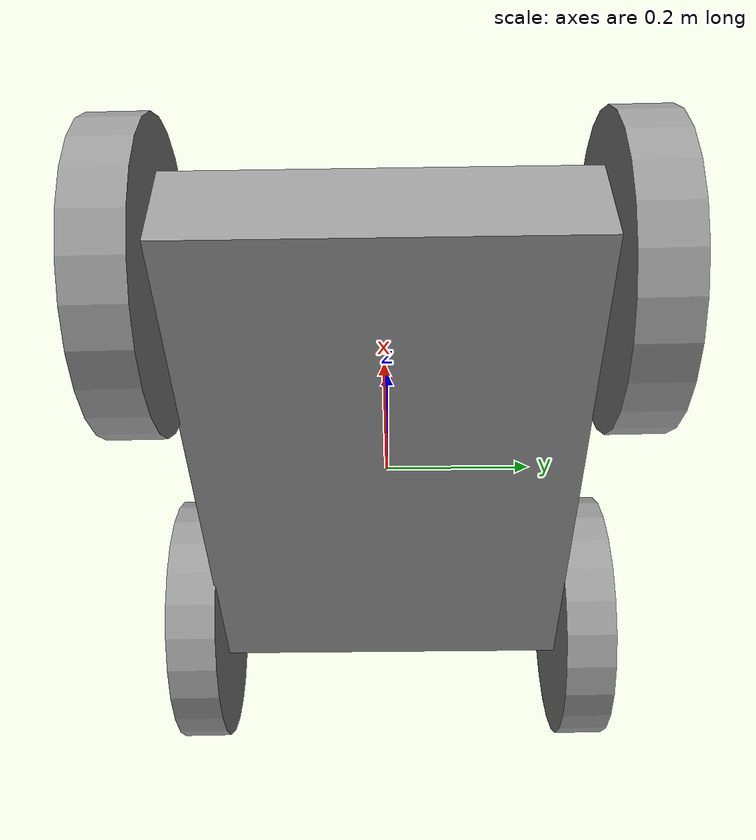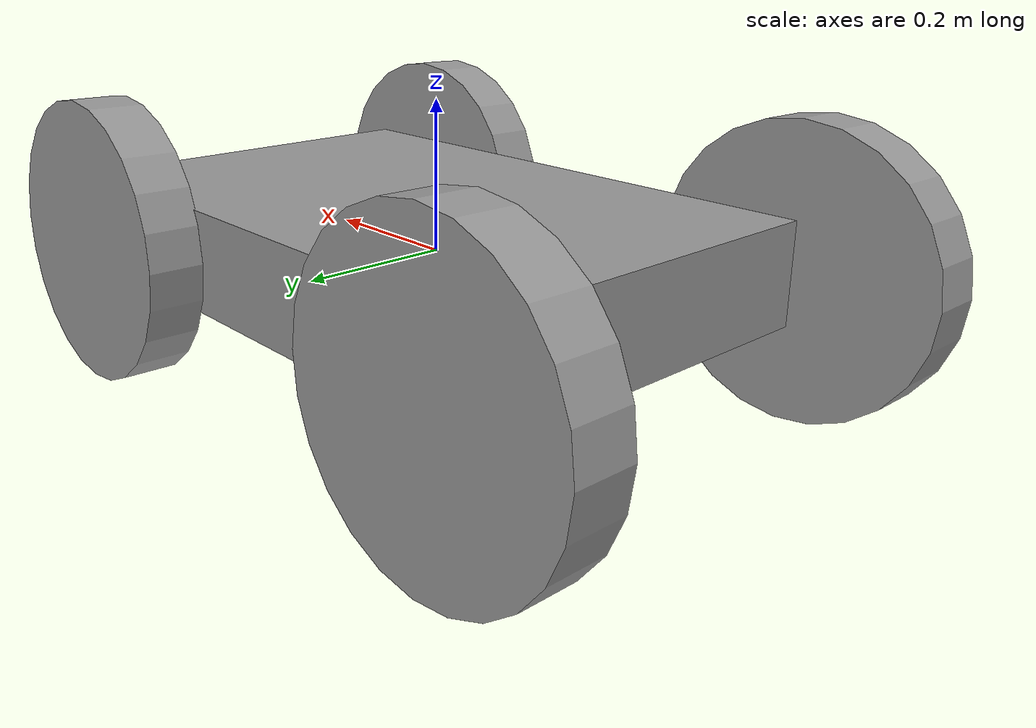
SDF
<?xml version='1.0'?>
<sdf version='1.7'>
  <model name='Four_Wheel'>
    <link name='link_0'>
      <inertial>
        <mass>0.0586991</mass>
        <inertia>
          <ixx>0.00145714</ixx>
          <ixy>0</ixy>
          <ixz>0</ixz>
          <iyy>0.00329819</iyy>
          <iyz>0</iyz>
          <izz>0.00457123</izz>
        </inertia>
        <pose>0 0 0 0 -0 0</pose>
      </inertial>
      <pose>0.04 0 0 0 -0 0</pose>
      <gravity>1</gravity>
      <self_collide>0</self_collide>
      <kinematic>0</kinematic>
      <enable_wind>0</enable_wind>
      <visual name='visual'>
        <pose>0 0 0 0 -0 0</pose>
        <geometry>
          <box>
            <size>0.809592 0.528269 0.137176</size>
          </box>
        </geometry>
        <material>
          <lighting>1</lighting>
          <script>
            <uri>file://media/materials/scripts/gazebo.material</uri>
            <name>Gazebo/Grey</name>
          </script>
          <shader type='pixel'>
            <normal_map>__default__</normal_map>
          </shader>
          <ambient>0.3 0.3 0.3 1</ambient>
          <diffuse>0.7 0.7 0.7 1</diffuse>
          <specular>0.01 0.01 0.01 1</specular>
          <emissive>0 0 0 1</emissive>
        </material>
        <transparency>0</transparency>
        <cast_shadows>1</cast_shadows>
      </visual>
      <collision name='collision'>
        <laser_retro>0</laser_retro>
        <max_contacts>10</max_contacts>
        <pose>0 0 0 0 -0 0</pose>
        <geometry>
          <box>
            <size>0.809592 0.528269 0.137176</size>
          </box>
        </geometry>
        <surface>
          <friction>
            <ode>
              <mu>1</mu>
              <mu2>1</mu2>
              <fdir1>0 0 0</fdir1>
              <slip1>0</slip1>
              <slip2>0</slip2>
            </ode>
            <torsional>
              <coefficient>1</coefficient>
              <patch_radius>0</patch_radius>
              <surface_radius>0</surface_radius>
              <use_patch_radius>1</use_patch_radius>
              <ode>
                <slip>0</slip>
              </ode>
            </torsional>
          </friction>
          <bounce>
            <restitution_coefficient>0</restitution_coefficient>
            <threshold>1e+06</threshold>
          </bounce>
          <contact>
            <collide_without_contact>0</collide_without_contact>
            <collide_without_contact_bitmask>1</collide_without_contact_bitmask>
            <collide_bitmask>1</collide_bitmask>
            <ode>
              <soft_cfm>0</soft_cfm>
              <soft_erp>0.2</soft_erp>
              <kp>1e+13</kp>
              <kd>1</kd>
              <max_vel>0.01</max_vel>
              <min_depth>0</min_depth>
            </ode>
            <bullet>
              <split_impulse>1</split_impulse>
              <split_impulse_penetration_threshold>-0.01</split_impulse_penetration_threshold>
              <soft_cfm>0</soft_cfm>
              <soft_erp>0.2</soft_erp>
              <kp>1e+13</kp>
              <kd>1</kd>
            </bullet>
          </contact>
        </surface>
      </collision>
    </link>
    <link name='link_2'>
      <inertial>
        <mass>0.0109875</mass>
        <inertia>
          <ixx>0.00010673</ixx>
          <ixy>0</ixy>
          <ixz>0</ixz>
          <iyy>0.00010673</iyy>
          <iyz>0</iyz>
          <izz>0.0002034</izz>
        </inertia>
        <pose>0 0 0 0 -0 0</pose>
      </inertial>
      <pose>0.34 0.3 0 1.58389 -0 0</pose>
      <gravity>1</gravity>
      <self_collide>0</self_collide>
      <kinematic>0</kinematic>
      <enable_wind>0</enable_wind>
      <visual name='visual'>
        <pose>0 0 0 0 -0 0</pose>
        <geometry>
          <cylinder>
            <radius>0.192415</radius>
            <length>0.0741472</length>
          </cylinder>
        </geometry>
        <material>
          <lighting>1</lighting>
          <script>
            <uri>file://media/materials/scripts/gazebo.material</uri>
            <name>Gazebo/Grey</name>
          </script>
          <shader type='pixel'>
            <normal_map>__default__</normal_map>
          </shader>
          <ambient>0.3 0.3 0.3 1</ambient>
          <diffuse>0.7 0.7 0.7 1</diffuse>
          <specular>0.01 0.01 0.01 1</specular>
          <emissive>0 0 0 1</emissive>
        </material>
        <transparency>0</transparency>
        <cast_shadows>1</cast_shadows>
      </visual>
      <collision name='collision'>
        <laser_retro>0</laser_retro>
        <max_contacts>10</max_contacts>
        <pose>0 0 0 0 -0 0</pose>
        <geometry>
          <cylinder>
            <radius>0.192415</radius>
            <length>0.074147</length>
          </cylinder>
        </geometry>
        <surface>
          <friction>
            <ode>
              <mu>1</mu>
              <mu2>1</mu2>
              <fdir1>0 0 0</fdir1>
              <slip1>0</slip1>
              <slip2>0</slip2>
            </ode>
            <torsional>
              <coefficient>1</coefficient>
              <patch_radius>0</patch_radius>
              <surface_radius>0</surface_radius>
              <use_patch_radius>1</use_patch_radius>
              <ode>
                <slip>0</slip>
              </ode>
            </torsional>
          </friction>
          <bounce>
            <restitution_coefficient>0</restitution_coefficient>
            <threshold>1e+06</threshold>
          </bounce>
          <contact>
            <collide_without_contact>0</collide_without_contact>
            <collide_without_contact_bitmask>1</collide_without_contact_bitmask>
            <collide_bitmask>1</collide_bitmask>
            <ode>
              <soft_cfm>0</soft_cfm>
              <soft_erp>0.2</soft_erp>
              <kp>1e+13</kp>
              <kd>1</kd>
              <max_vel>0.01</max_vel>
              <min_depth>0</min_depth>
            </ode>
            <bullet>
              <split_impulse>1</split_impulse>
              <split_impulse_penetration_threshold>-0.01</split_impulse_penetration_threshold>
              <soft_cfm>0</soft_cfm>
              <soft_erp>0.2</soft_erp>
              <kp>1e+13</kp>
              <kd>1</kd>
            </bullet>
          </contact>
        </surface>
      </collision>
    </link>
    <link name='link_2_clone'>
      <inertial>
        <mass>0.0109875</mass>
        <inertia>
          <ixx>0.00010673</ixx>
          <ixy>0</ixy>
          <ixz>0</ixz>
          <iyy>0.00010673</iyy>
          <iyz>0</iyz>
          <izz>0.0002034</izz>
        </inertia>
        <pose>0 0 0 0 -0 0</pose>
      </inertial>
      <pose>-0.36 0.3 0 1.58389 -0 0</pose>
      <gravity>1</gravity>
      <self_collide>0</self_collide>
      <kinematic>0</kinematic>
      <enable_wind>0</enable_wind>
      <visual name='visual'>
        <pose>0 0 0 0 -0 0</pose>
        <geometry>
          <cylinder>
            <radius>0.192415</radius>
            <length>0.0741472</length>
          </cylinder>
        </geometry>
        <material>
          <lighting>1</lighting>
          <script>
            <uri>file://media/materials/scripts/gazebo.material</uri>
            <name>Gazebo/Grey</name>
          </script>
          <shader type='pixel'>
            <normal_map>__default__</normal_map>
          </shader>
          <ambient>0.3 0.3 0.3 1</ambient>
          <diffuse>0.7 0.7 0.7 1</diffuse>
          <specular>0.01 0.01 0.01 1</specular>
          <emissive>0 0 0 1</emissive>
        </material>
        <transparency>0</transparency>
        <cast_shadows>1</cast_shadows>
      </visual>
      <collision name='collision'>
        <laser_retro>0</laser_retro>
        <max_contacts>10</max_contacts>
        <pose>0 0 0 0 -0 0</pose>
        <geometry>
          <cylinder>
            <radius>0.192415</radius>
            <length>0.074147</length>
          </cylinder>
        </geometry>
        <surface>
          <friction>
            <ode>
              <mu>1</mu>
              <mu2>1</mu2>
              <fdir1>0 0 0</fdir1>
              <slip1>0</slip1>
              <slip2>0</slip2>
            </ode>
            <torsional>
              <coefficient>1</coefficient>
              <patch_radius>0</patch_radius>
              <surface_radius>0</surface_radius>
              <use_patch_radius>1</use_patch_radius>
              <ode>
                <slip>0</slip>
              </ode>
            </torsional>
          </friction>
          <bounce>
            <restitution_coefficient>0</restitution_coefficient>
            <threshold>1e+06</threshold>
          </bounce>
          <contact>
            <collide_without_contact>0</collide_without_contact>
            <collide_without_contact_bitmask>1</collide_without_contact_bitmask>
            <collide_bitmask>1</collide_bitmask>
            <ode>
              <soft_cfm>0</soft_cfm>
              <soft_erp>0.2</soft_erp>
              <kp>1e+13</kp>
              <kd>1</kd>
              <max_vel>0.01</max_vel>
              <min_depth>0</min_depth>
            </ode>
            <bullet>
              <split_impulse>1</split_impulse>
              <split_impulse_penetration_threshold>-0.01</split_impulse_penetration_threshold>
              <soft_cfm>0</soft_cfm>
              <soft_erp>0.2</soft_erp>
              <kp>1e+13</kp>
              <kd>1</kd>
            </bullet>
          </contact>
        </surface>
      </collision>
    </link>
    <link name='link_2_clone_0'>
      <inertial>
        <mass>0.0109875</mass>
        <inertia>
          <ixx>0.00010673</ixx>
          <ixy>0</ixy>
          <ixz>0</ixz>
          <iyy>0.00010673</iyy>
          <iyz>0</iyz>
          <izz>0.0002034</izz>
        </inertia>
        <pose>0 0 0 0 -0 0</pose>
      </inertial>
      <pose>0.34 -0.3 0 1.58389 -0 0</pose>
      <gravity>1</gravity>
      <self_collide>0</self_collide>
      <kinematic>0</kinematic>
      <enable_wind>0</enable_wind>
      <visual name='visual'>
        <pose>0 0 0 0 -0 0</pose>
        <geometry>
          <cylinder>
            <radius>0.192415</radius>
            <length>0.0741472</length>
          </cylinder>
        </geometry>
        <material>
          <lighting>1</lighting>
          <script>
            <uri>file://media/materials/scripts/gazebo.material</uri>
            <name>Gazebo/Grey</name>
          </script>
          <shader type='pixel'>
            <normal_map>__default__</normal_map>
          </shader>
          <ambient>0.3 0.3 0.3 1</ambient>
          <diffuse>0.7 0.7 0.7 1</diffuse>
          <specular>0.01 0.01 0.01 1</specular>
          <emissive>0 0 0 1</emissive>
        </material>
        <transparency>0</transparency>
        <cast_shadows>1</cast_shadows>
      </visual>
      <collision name='collision'>
        <laser_retro>0</laser_retro>
        <max_contacts>10</max_contacts>
        <pose>0 0 0 0 -0 0</pose>
        <geometry>
          <cylinder>
            <radius>0.192415</radius>
            <length>0.074147</length>
          </cylinder>
        </geometry>
        <surface>
          <friction>
            <ode>
              <mu>1</mu>
              <mu2>1</mu2>
              <fdir1>0 0 0</fdir1>
              <slip1>0</slip1>
              <slip2>0</slip2>
            </ode>
            <torsional>
              <coefficient>1</coefficient>
              <patch_radius>0</patch_radius>
              <surface_radius>0</surface_radius>
              <use_patch_radius>1</use_patch_radius>
              <ode>
                <slip>0</slip>
              </ode>
            </torsional>
          </friction>
          <bounce>
            <restitution_coefficient>0</restitution_coefficient>
            <threshold>1e+06</threshold>
          </bounce>
          <contact>
            <collide_without_contact>0</collide_without_contact>
            <collide_without_contact_bitmask>1</collide_without_contact_bitmask>
            <collide_bitmask>1</collide_bitmask>
            <ode>
              <soft_cfm>0</soft_cfm>
              <soft_erp>0.2</soft_erp>
              <kp>1e+13</kp>
              <kd>1</kd>
              <max_vel>0.01</max_vel>
              <min_depth>0</min_depth>
            </ode>
            <bullet>
              <split_impulse>1</split_impulse>
              <split_impulse_penetration_threshold>-0.01</split_impulse_penetration_threshold>
              <soft_cfm>0</soft_cfm>
              <soft_erp>0.2</soft_erp>
              <kp>1e+13</kp>
              <kd>1</kd>
            </bullet>
          </contact>
        </surface>
      </collision>
    </link>
    <link name='link_2_clone_1'>
      <inertial>
        <mass>0.0109875</mass>
        <inertia>
          <ixx>0.00010673</ixx>
          <ixy>0</ixy>
          <ixz>0</ixz>
          <iyy>0.00010673</iyy>
          <iyz>0</iyz>
          <izz>0.0002034</izz>
        </inertia>
        <pose>0 0 0 0 -0 0</pose>
      </inertial>
      <pose>-0.36 -0.3 0 1.58389 -0 0</pose>
      <gravity>1</gravity>
      <self_collide>0</self_collide>
      <kinematic>0</kinematic>
      <enable_wind>0</enable_wind>
      <visual name='visual'>
        <pose>0 0 0 0 -0 0</pose>
        <geometry>
          <cylinder>
            <radius>0.192415</radius>
            <length>0.0741472</length>
          </cylinder>
        </geometry>
        <material>
          <lighting>1</lighting>
          <script>
            <uri>file://media/materials/scripts/gazebo.material</uri>
            <name>Gazebo/Grey</name>
          </script>
          <shader type='pixel'>
            <normal_map>__default__</normal_map>
          </shader>
          <ambient>0.3 0.3 0.3 1</ambient>
          <diffuse>0.7 0.7 0.7 1</diffuse>
          <specular>0.01 0.01 0.01 1</specular>
          <emissive>0 0 0 1</emissive>
        </material>
        <transparency>0</transparency>
        <cast_shadows>1</cast_shadows>
      </visual>
      <collision name='collision'>
        <laser_retro>0</laser_retro>
        <max_contacts>10</max_contacts>
        <pose>0 0 0 0 -0 0</pose>
        <geometry>
          <cylinder>
            <radius>0.192415</radius>
            <length>0.074147</length>
          </cylinder>
        </geometry>
        <surface>
          <friction>
            <ode>
              <mu>1</mu>
              <mu2>1</mu2>
              <fdir1>0 0 0</fdir1>
              <slip1>0</slip1>
              <slip2>0</slip2>
            </ode>
            <torsional>
              <coefficient>1</coefficient>
              <patch_radius>0</patch_radius>
              <surface_radius>0</surface_radius>
              <use_patch_radius>1</use_patch_radius>
              <ode>
                <slip>0</slip>
              </ode>
            </torsional>
          </friction>
          <bounce>
            <restitution_coefficient>0</restitution_coefficient>
            <threshold>1e+06</threshold>
          </bounce>
          <contact>
            <collide_without_contact>0</collide_without_contact>
            <collide_without_contact_bitmask>1</collide_without_contact_bitmask>
            <collide_bitmask>1</collide_bitmask>
            <ode>
              <soft_cfm>0</soft_cfm>
              <soft_erp>0.2</soft_erp>
              <kp>1e+13</kp>
              <kd>1</kd>
              <max_vel>0.01</max_vel>
              <min_depth>0</min_depth>
            </ode>
            <bullet>
              <split_impulse>1</split_impulse>
              <split_impulse_penetration_threshold>-0.01</split_impulse_penetration_threshold>
              <soft_cfm>0</soft_cfm>
              <soft_erp>0.2</soft_erp>
              <kp>1e+13</kp>
              <kd>1</kd>
            </bullet>
          </contact>
        </surface>
      </collision>
    </link>
    <joint name='link_0_JOINT_2' type='revolute'>
      <parent>link_0</parent>
      <child>link_2</child>
      <pose>0 0 0 0 -0 0</pose>
      <axis>
        <xyz>1 0 0</xyz>
        <limit>
          <lower>-1.79769e+308</lower>
          <upper>1.79769e+308</upper>
          <effort>-1</effort>
          <velocity>-1</velocity>
        </limit>
        <dynamics>
          <spring_reference>0</spring_reference>
          <spring_stiffness>0</spring_stiffness>
          <damping>0</damping>
        </dynamics>
      </axis>
      <physics>
        <ode>
          <limit>
            <cfm>0</cfm>
            <erp>0.2</erp>
          </limit>
          <suspension>
            <cfm>0</cfm>
            <erp>0.2</erp>
          </suspension>
        </ode>
      </physics>
    </joint>
    <joint name='link_0_JOINT_3' type='revolute'>
      <parent>link_0</parent>
      <child>link_2_clone</child>
      <pose>0 0 0 0 -0 0</pose>
      <axis>
        <xyz>1 0 0</xyz>
        <limit>
          <lower>-1.79769e+308</lower>
          <upper>1.79769e+308</upper>
          <effort>-1</effort>
          <velocity>-1</velocity>
        </limit>
        <dynamics>
          <spring_reference>0</spring_reference>
          <spring_stiffness>0</spring_stiffness>
          <damping>0</damping>
        </dynamics>
      </axis>
      <physics>
        <ode>
          <limit>
            <cfm>0</cfm>
            <erp>0.2</erp>
          </limit>
          <suspension>
            <cfm>0</cfm>
            <erp>0.2</erp>
          </suspension>
        </ode>
      </physics>
    </joint>
    <joint name='link_0_JOINT_4' type='revolute'>
      <parent>link_0</parent>
      <child>link_2_clone_0</child>
      <pose>0 0 0 0 -0 0</pose>
      <axis>
        <xyz>1 0 0</xyz>
        <limit>
          <lower>-1.79769e+308</lower>
          <upper>1.79769e+308</upper>
          <effort>-1</effort>
          <velocity>-1</velocity>
        </limit>
        <dynamics>
          <spring_reference>0</spring_reference>
          <spring_stiffness>0</spring_stiffness>
          <damping>0</damping>
        </dynamics>
      </axis>
      <physics>
        <ode>
          <limit>
            <cfm>0</cfm>
            <erp>0.2</erp>
          </limit>
          <suspension>
            <cfm>0</cfm>
            <erp>0.2</erp>
          </suspension>
        </ode>
      </physics>
    </joint>
    <joint name='link_0_JOINT_5' type='revolute'>
      <parent>link_0</parent>
      <child>link_2_clone_1</child>
      <pose>0 0 0 0 -0 0</pose>
      <axis>
        <xyz>1 0 0</xyz>
        <limit>
          <lower>-1.79769e+308</lower>
          <upper>1.79769e+308</upper>
          <effort>-1</effort>
          <velocity>-1</velocity>
        </limit>
        <dynamics>
          <spring_reference>0</spring_reference>
          <spring_stiffness>0</spring_stiffness>
          <damping>0</damping>
        </dynamics>
      </axis>
      <physics>
        <ode>
          <limit>
            <cfm>0</cfm>
            <erp>0.2</erp>
          </limit>
          <suspension>
            <cfm>0</cfm>
            <erp>0.2</erp>
          </suspension>
        </ode>
      </physics>
    </joint>
    <static>0</static>
    <allow_auto_disable>1</allow_auto_disable>
  </model>
</sdf>
